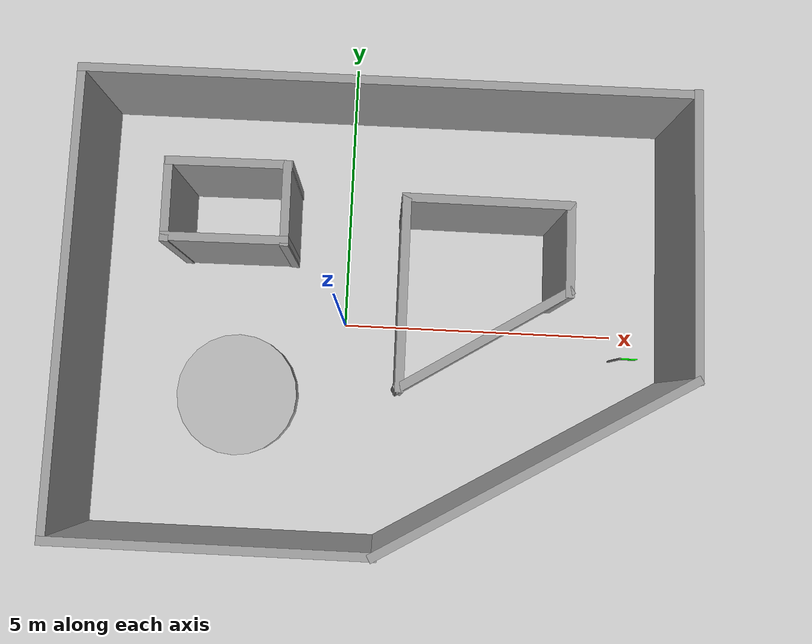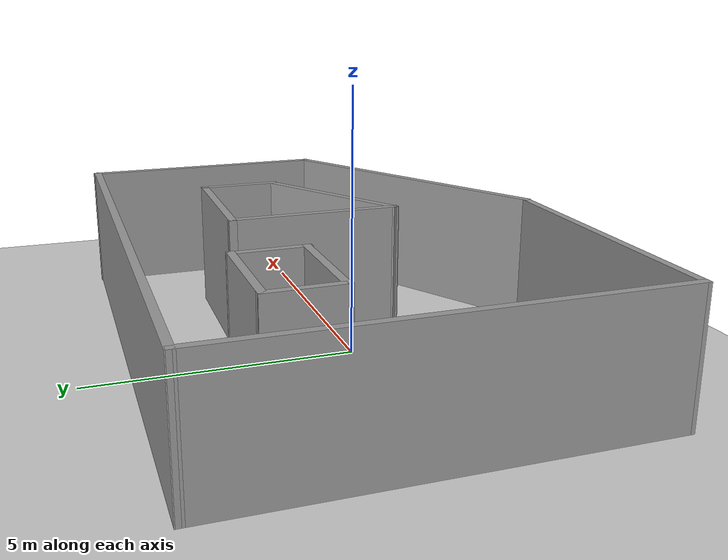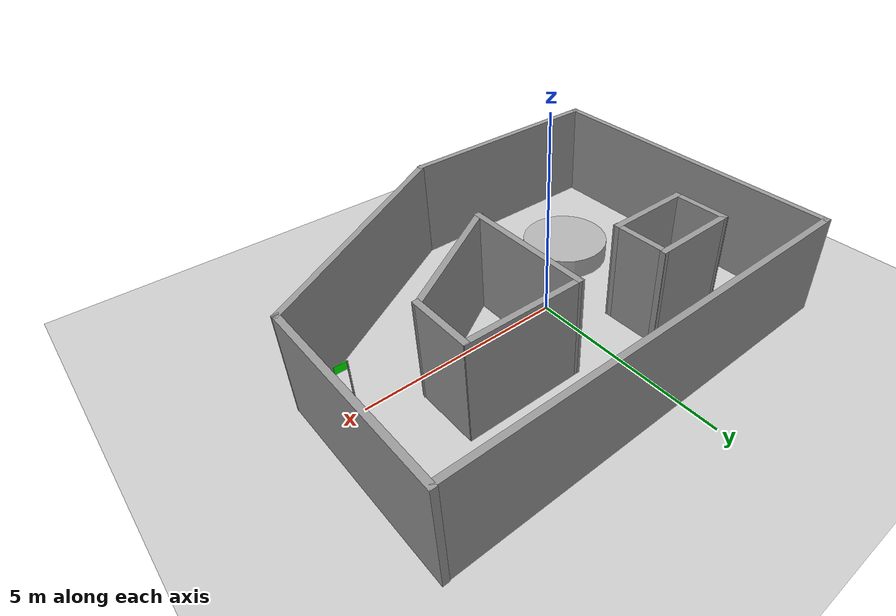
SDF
<?xml version="1.0" ?>
<sdf version="1.8">
  <world name='test_map_3'>
    <physics name='1ms' type='ode'>
      <max_step_size>0.003</max_step_size>
      <real_time_factor>1</real_time_factor>
      <real_time_update_rate>1000</real_time_update_rate>
    </physics>

    <plugin filename="libignition-gazebo-physics-system.so" name="ignition::gazebo::systems::Physics" />
    <plugin filename="libignition-gazebo-user-commands-system.so" name="ignition::gazebo::systems::UserCommands" />
    <plugin filename="libignition-gazebo-scene-broadcaster-system.so" name="ignition::gazebo::systems::SceneBroadcaster" />
    <plugin filename="libignition-gazebo-sensors-system.so" name="ignition::gazebo::systems::Sensors">
      <render_engine>ogre</render_engine>
    </plugin>

    <light type="directional" name="sun">
      <cast_shadows>true</cast_shadows>
      <pose>0 0 10 0 0 0</pose>
      <diffuse>0.8 0.8 0.8 1</diffuse>
      <specular>0.2 0.2 0.2 1</specular>
      <direction>-0.5 0.1 -0.9</direction>
    </light>

    <model name="ground_plane">
      <static>true</static>
      <link name="link">
        <collision name="collision">
          <geometry><plane><normal>0 0 1</normal><size>100 100</size></plane></geometry>
        </collision>
        <visual name="visual">
          <geometry><plane><normal>0 0 1</normal><size>100 100</size></plane></geometry>
          <material>
            <ambient>0.8 0.8 0.8 1</ambient>
            <diffuse>0.8 0.8 0.8 1</diffuse>
          </material>
        </visual>
      </link>
    </model>

    <model name='mappa_3'>
      <static>true</static>
      <pose>0.654951 0.036824 0 0 -0 0</pose>
    <link name='Wall_0'>
      <collision name='Wall_0_Collision'>
        <geometry>
          <box>
            <size>8.05249 0.15 2.5</size>
          </box>
        </geometry>
        <pose>0 0 1.25 0 -0 0</pose>
      </collision>
      <visual name='Wall_0_Visual'>
        <pose>0 0 1.25 0 -0 0</pose>
        <geometry>
          <box>
            <size>8.05249 0.15 2.5</size>
          </box>
        </geometry>
        <material>
          <script>
            <uri>file://media/materials/scripts/gazebo.material</uri>
            <name>Gazebo/Grey</name>
          </script>
          <ambient>1 1 1 1</ambient>
        </material>
        <meta>
          <layer>0</layer>
        </meta>
      </visual>
      <pose>-5.29515 -0.012782 0 0 -0 1.57301</pose>
    </link>
    <link name='Wall_1'>
      <collision name='Wall_1_Collision'>
        <geometry>
          <box>
            <size>10.6801 0.15 2.5</size>
          </box>
        </geometry>
        <pose>0 0 1.25 0 -0 0</pose>
      </collision>
      <visual name='Wall_1_Visual'>
        <pose>0 0 1.25 0 -0 0</pose>
        <geometry>
          <box>
            <size>10.6801 0.15 2.5</size>
          </box>
        </geometry>
        <material>
          <script>
            <uri>file://media/materials/scripts/gazebo.material</uri>
            <name>Gazebo/Grey</name>
          </script>
          <ambient>1 1 1 1</ambient>
        </material>
        <meta>
          <layer>0</layer>
        </meta>
      </visual>
      <pose>-0.038877 3.96469 0 0 -0 0.001661</pose>
    </link>
    <link name='Wall_10'>
      <collision name='Wall_10_Collision'>
        <geometry>
          <box>
            <size>3.406 0.15 2.5</size>
          </box>
        </geometry>
        <pose>0 0 1.25 0 -0 0</pose>
      </collision>
      <visual name='Wall_10_Visual'>
        <pose>0 0 1.25 0 -0 0</pose>
        <geometry>
          <box>
            <size>3.406 0.15 2.5</size>
          </box>
        </geometry>
        <material>
          <script>
            <uri>file://media/materials/scripts/gazebo.material</uri>
            <name>Gazebo/Grey</name>
          </script>
          <ambient>1 1 1 1</ambient>
        </material>
        <meta>
          <layer>0</layer>
        </meta>
      </visual>
      <pose>1.74074 -0.376682 0 0 -0 -2.58468</pose>
    </link>
    <link name='Wall_12'>
      <collision name='Wall_12_Collision'>
        <geometry>
          <box>
            <size>1.46502 0.15 2.5</size>
          </box>
        </geometry>
        <pose>0 0 1.25 0 -0 0</pose>
      </collision>
      <visual name='Wall_12_Visual'>
        <pose>0 0 1.25 0 -0 0</pose>
        <geometry>
          <box>
            <size>1.46502 0.15 2.5</size>
          </box>
        </geometry>
        <material>
          <script>
            <uri>file://media/materials/scripts/gazebo.material</uri>
            <name>Gazebo/Grey</name>
          </script>
          <ambient>1 1 1 1</ambient>
        </material>
        <meta>
          <layer>0</layer>
        </meta>
      </visual>
      <pose>-3.68925 1.73725 0 0 -0 -1.5575</pose>
    </link>
    <link name='Wall_13'>
      <collision name='Wall_13_Collision'>
        <geometry>
          <box>
            <size>2.16263 0.15 2.5</size>
          </box>
        </geometry>
        <pose>0 0 1.25 0 -0 0</pose>
      </collision>
      <visual name='Wall_13_Visual'>
        <pose>0 0 1.25 0 -0 0</pose>
        <geometry>
          <box>
            <size>2.16263 0.15 2.5</size>
          </box>
        </geometry>
        <material>
          <script>
            <uri>file://media/materials/scripts/gazebo.material</uri>
            <name>Gazebo/Grey</name>
          </script>
          <ambient>1 1 1 1</ambient>
        </material>
        <meta>
          <layer>0</layer>
        </meta>
      </visual>
      <pose>-2.67423 1.10597 0 0 -0 0.00869</pose>
    </link>
    <link name='Wall_14'>
      <collision name='Wall_14_Collision'>
        <geometry>
          <box>
            <size>1.46502 0.15 2.5</size>
          </box>
        </geometry>
        <pose>0 0 1.25 0 -0 0</pose>
      </collision>
      <visual name='Wall_14_Visual'>
        <pose>0 0 1.25 0 -0 0</pose>
        <geometry>
          <box>
            <size>1.46502 0.15 2.5</size>
          </box>
        </geometry>
        <material>
          <script>
            <uri>file://media/materials/scripts/gazebo.material</uri>
            <name>Gazebo/Grey</name>
          </script>
          <ambient>1 1 1 1</ambient>
        </material>
        <meta>
          <layer>0</layer>
        </meta>
      </visual>
      <pose>-1.6767 1.75474 0 0 -0 1.5841</pose>
    </link>
    <link name='Wall_15'>
      <collision name='Wall_15_Collision'>
        <geometry>
          <box>
            <size>2.16263 0.15 2.5</size>
          </box>
        </geometry>
        <pose>0 0 1.25 0 -0 0</pose>
      </collision>
      <visual name='Wall_15_Visual'>
        <pose>0 0 1.25 0 -0 0</pose>
        <geometry>
          <box>
            <size>2.16263 0.15 2.5</size>
          </box>
        </geometry>
        <material>
          <script>
            <uri>file://media/materials/scripts/gazebo.material</uri>
            <name>Gazebo/Grey</name>
          </script>
          <ambient>1 1 1 1</ambient>
        </material>
        <meta>
          <layer>0</layer>
        </meta>
      </visual>
      <pose>-2.67423 2.4035 0 0 -0 -3.1329</pose>
    </link>
   <model name='first_cylinder'>
        <link name='link'>
          <collision name='collision'>
            <geometry><cylinder><radius>1.1</radius><length>1.0</length></cylinder></geometry>
          </collision>
          <visual name='visual'>
            <geometry><cylinder><radius>1.1</radius><length>1.0</length></cylinder></geometry>
            <material><ambient>0.5 0.5 0.5 1</ambient><diffuse>0.7 0.7 0.7 1</diffuse></material>
          </visual>
          <pose>-2.56799 -1.44561 0 0 -0 0</pose>
        </link>
      </model>
    <link name='Wall_19'>
      <collision name='Wall_19_Collision'>
        <geometry>
          <box>
            <size>1.60953 0.15 2.5</size>
          </box>
        </geometry>
        <pose>0 0 1.25 0 -0 0</pose>
      </collision>
      <visual name='Wall_19_Visual'>
        <pose>0 0 1.25 0 -0 0</pose>
        <geometry>
          <box>
            <size>1.60953 0.15 2.5</size>
          </box>
        </geometry>
        <material>
          <script>
            <uri>file://media/materials/scripts/gazebo.material</uri>
            <name>Gazebo/Grey</name>
          </script>
          <ambient>1 1 1 1</ambient>
        </material>
        <meta>
          <layer>0</layer>
        </meta>
      </visual>
      <pose>3.12872 1.19057 0 0 -0 -1.56325</pose>
    </link>
    <link name='Wall_3'>
      <collision name='Wall_3_Collision'>
        <geometry>
          <box>
            <size>5.5 0.15 2.5</size>
          </box>
        </geometry>
        <pose>0 0 1.25 0 -0 0</pose>
      </collision>
      <visual name='Wall_3_Visual'>
        <pose>0 0 1.25 0 -0 0</pose>
        <geometry>
          <box>
            <size>5.5 0.15 2.5</size>
          </box>
        </geometry>
        <material>
          <script>
            <uri>file://media/materials/scripts/gazebo.material</uri>
            <name>Gazebo/Grey</name>
          </script>
          <ambient>1 1 1 1</ambient>
        </material>
        <meta>
          <layer>0</layer>
        </meta>
      </visual>
      <pose>-2.61141 -3.96402 0 0 -0 0</pose>
    </link>
    <link name='Wall_4'>
      <collision name='Wall_4_Collision'>
        <geometry>
          <box>
            <size>6.19836 0.15 2.5</size>
          </box>
        </geometry>
        <pose>0 0 1.25 0 -0 0</pose>
      </collision>
      <visual name='Wall_4_Visual'>
        <pose>0 0 1.25 0 -0 0</pose>
        <geometry>
          <box>
            <size>6.19836 0.15 2.5</size>
          </box>
        </geometry>
        <material>
          <script>
            <uri>file://media/materials/scripts/gazebo.material</uri>
            <name>Gazebo/Grey</name>
          </script>
          <ambient>1 1 1 1</ambient>
        </material>
        <meta>
          <layer>0</layer>
        </meta>
      </visual>
      <pose>2.66999 -2.43027 0 0 -0 0.531887</pose>
    </link>
    <link name='Wall_5'>
      <collision name='Wall_5_Collision'>
        <geometry>
          <box>
            <size>5.02022 0.15 2.5</size>
          </box>
        </geometry>
        <pose>0 0 1.25 0 -0 0</pose>
      </collision>
      <visual name='Wall_5_Visual'>
        <pose>0 0 1.25 0 -0 0</pose>
        <geometry>
          <box>
            <size>5.02022 0.15 2.5</size>
          </box>
        </geometry>
        <material>
          <script>
            <uri>file://media/materials/scripts/gazebo.material</uri>
            <name>Gazebo/Grey</name>
          </script>
          <ambient>1 1 1 1</ambient>
        </material>
        <meta>
          <layer>0</layer>
        </meta>
      </visual>
      <pose>5.26875 1.55594 0 0 -0 1.58111</pose>
    </link>
    <link name='Wall_7'>
      <collision name='Wall_7_Collision'>
        <geometry>
          <box>
            <size>3.34208 0.15 2.5</size>
          </box>
        </geometry>
        <pose>0 0 1.25 0 -0 0</pose>
      </collision>
      <visual name='Wall_7_Visual'>
        <pose>0 0 1.25 0 -0 0</pose>
        <geometry>
          <box>
            <size>3.34208 0.15 2.5</size>
          </box>
        </geometry>
        <material>
          <script>
            <uri>file://media/materials/scripts/gazebo.material</uri>
            <name>Gazebo/Grey</name>
          </script>
          <ambient>1 1 1 1</ambient>
        </material>
        <meta>
          <layer>0</layer>
        </meta>
      </visual>
      <pose>0.364731 0.358813 0 0 -0 1.57425</pose>
    </link>
    <link name='Wall_8'>
      <collision name='Wall_8_Collision'>
        <geometry>
          <box>
            <size>2.91401 0.15 2.5</size>
          </box>
        </geometry>
        <pose>0 0 1.25 0 -0 0</pose>
      </collision>
      <visual name='Wall_8_Visual'>
        <pose>0 0 1.25 0 -0 0</pose>
        <geometry>
          <box>
            <size>2.91401 0.15 2.5</size>
          </box>
        </geometry>
        <material>
          <script>
            <uri>file://media/materials/scripts/gazebo.material</uri>
            <name>Gazebo/Grey</name>
          </script>
          <ambient>1 1 1 1</ambient>
        </material>
        <meta>
          <layer>0</layer>
        </meta>
      </visual>
      <pose>1.72972 1.94906 0 0 -0 -0.004161</pose>
    </link>
    <static>1</static>
  </model>
  <model name='goal_flag'>
      <static>true</static>
      <pose>4.98 -0.45 0.05 0 0 0</pose>
      <link name='link'>

        <visual name='pole_visual'>
          <pose>0 0 0.5 0 0 0</pose>
          <geometry><cylinder><radius>0.02</radius><length>1.0</length></cylinder></geometry>
          <material><ambient>0.5 0.5 0.5 1</ambient><diffuse>0.5 0.5 0.5 1</diffuse></material>
        </visual>

        <visual name='flag_visual'>
          <pose>0.15 0 0.9 0 0 0</pose>
          <geometry><box><size>0.3 0.02 0.2</size></box></geometry>
          <material><ambient>0 1 0 1</ambient><diffuse>0 1 0 1</diffuse></material>
        </visual>

      </link>
    </model>
</world> <!-- AGGIUNGI QUESTA RIGA -->
</sdf>
